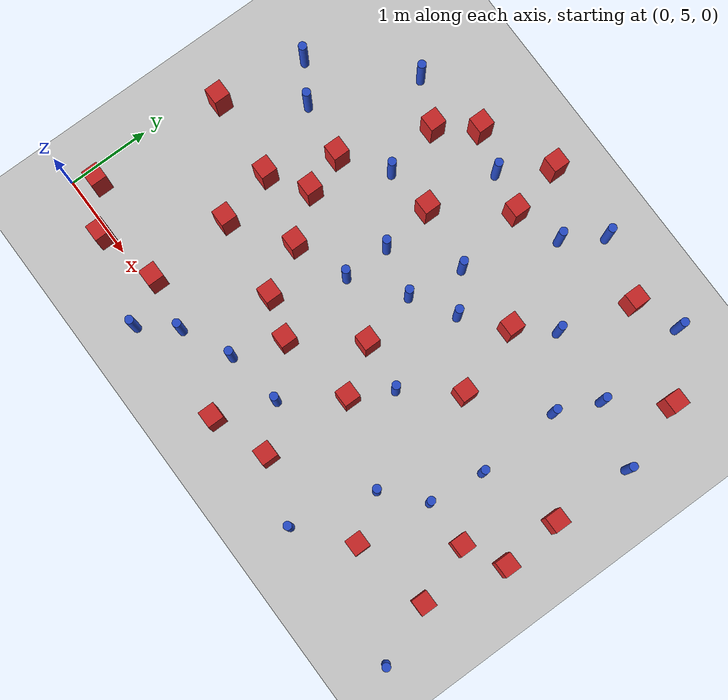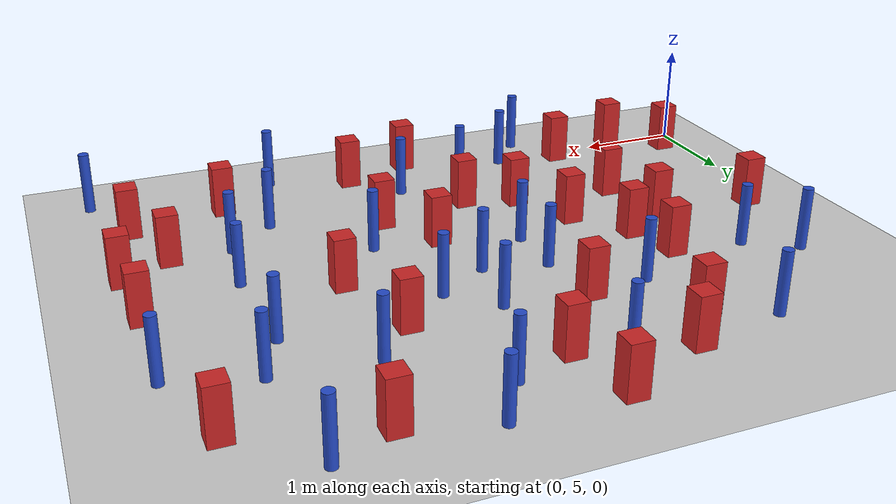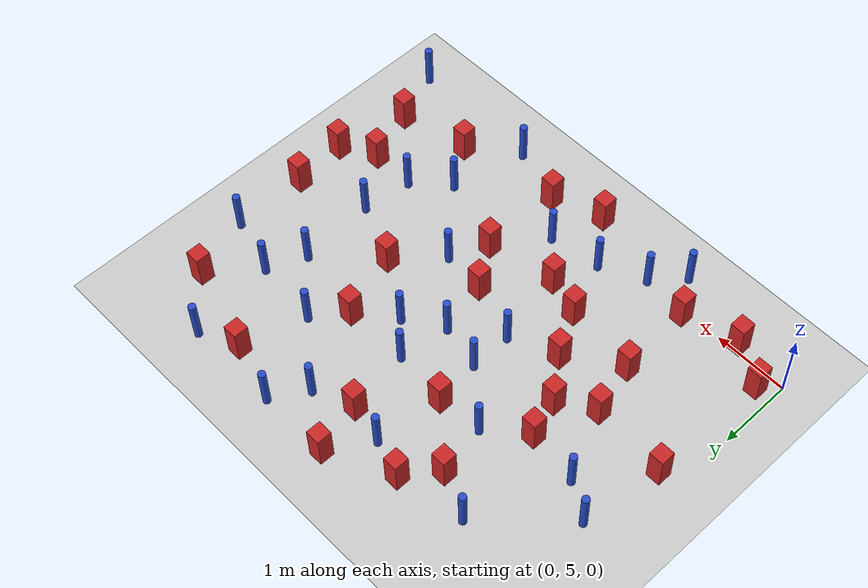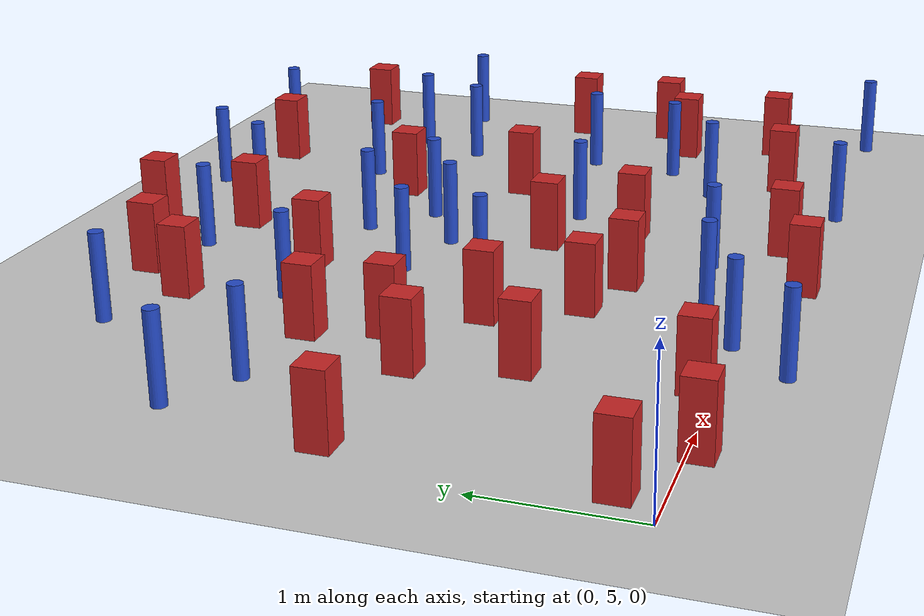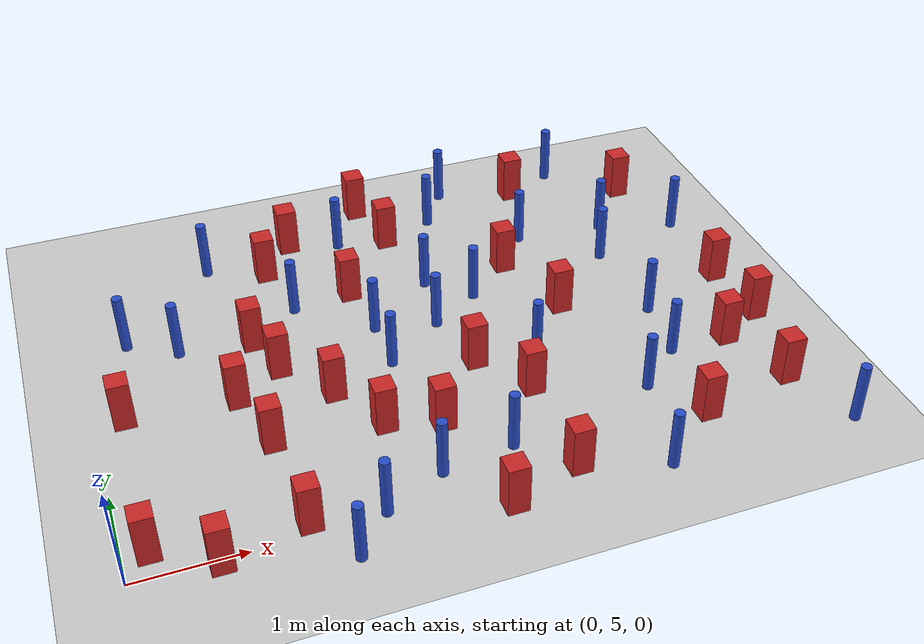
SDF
<sdf version="1.6">
 <world name="default">
  <model name="ground_plane">
   <static>1</static>
   <link name="link">
    <collision name="collision">
     <geometry><plane><normal>0 0 1</normal><size>100 100</size></plane></geometry>
     <surface><friction><ode><mu>100</mu><mu2>50</mu2></ode></friction></surface>
    </collision>
    <visual name="visual">
     <cast_shadows>0</cast_shadows>
     <geometry><plane><normal>0 0 1</normal><size>100 100</size></plane></geometry>
     <material>
      <ambient>1.0 1.0 1.0 1.0</ambient>
      <diffuse>0.8 0.8 0.8 1.0</diffuse>
      <specular>0.01 0.01 0.01 1.000000</specular>
     </material>
    </visual>
   </link>
  </model>
  <model name="square_post_obstacle8">
   <static>true</static>
   <pose>2.43546642392 6.04167440104 -6.11067671241e-07 -5.50515727128e-06 -8.79689657224e-07 2.37013304536e-05</pose>
   <link name="link">
    <pose>0 0 0.25 0 -0 0</pose>
    <inertial>
     <mass>100</mass>
     <inertia>
      <ixx>0.166667</ixx>
      <ixy>0</ixy>
      <ixz>0</ixz>
      <iyy>0.166667</iyy>
      <iyz>0</iyz>
      <izz>0.166667</izz>
     </inertia>
    </inertial>
    <collision name="collision"><geometry><box><size>.2 .2 .5</size></box></geometry></collision>
    <visual name="visual">
     <geometry><box><size>.2 .2 .5</size></box></geometry>
     <material>
      <script><name>Gazebo/Red</name><uri>file://media/materials/scripts/gazebo.material</uri></script>
     </material>
    </visual>
   </link>
  </model>
  <model name="pole_obstacle7">
   <static>true</static>
   <pose>4.10637829773 6.53729007636 -9.47619616065e-06 5.49618799737e-07 2.36310414037e-07 -1.55090534814e-07</pose>
   <link name="link">
    <pose>0 0 0.3 0 -0 0</pose>
    <inertial>
     <mass>1</mass>
     <inertia><ixx>0.145833</ixx><ixy>0</ixy><ixz>0</ixz><iyy>0.145833</iyy><iyz>0</iyz><izz>0.125</izz></inertia>
    </inertial>
    <collision name="collision">
     <geometry><cylinder><radius>0.05</radius><length>.6</length></cylinder></geometry>
    </collision>
    <visual name="visual">
     <geometry><cylinder><radius>0.05</radius><length>.6</length></cylinder></geometry>
     <material>
      <script><name>Gazebo/Blue</name><uri>file://media/materials/scripts/gazebo.material</uri></script>
     </material>
    </visual>
   </link>
  </model>
  <model name="pole_obstacle12">
   <static>true</static>
   <pose>5.3257718025 6.10005783365 -9.47619616065e-06 5.49618799737e-07 2.36310414037e-07 -1.55090534814e-07</pose>
   <link name="link">
    <pose>0 0 0.3 0 -0 0</pose>
    <inertial>
     <mass>1</mass>
     <inertia><ixx>0.145833</ixx><ixy>0</ixy><ixz>0</ixz><iyy>0.145833</iyy><iyz>0</iyz><izz>0.125</izz></inertia>
    </inertial>
    <collision name="collision">
     <geometry><cylinder><radius>0.05</radius><length>.6</length></cylinder></geometry>
    </collision>
    <visual name="visual">
     <geometry><cylinder><radius>0.05</radius><length>.6</length></cylinder></geometry>
     <material>
      <script><name>Gazebo/Blue</name><uri>file://media/materials/scripts/gazebo.material</uri></script>
     </material>
    </visual>
   </link>
  </model>
  <model name="square_post_obstacle22">
   <static>true</static>
   <pose>1.27177692569 6.81806596801 -6.11067671241e-07 -5.50515727128e-06 -8.79689657224e-07 2.37013304536e-05</pose>
   <link name="link">
    <pose>0 0 0.25 0 -0 0</pose>
    <inertial>
     <mass>100</mass>
     <inertia>
      <ixx>0.166667</ixx>
      <ixy>0</ixy>
      <ixz>0</ixz>
      <iyy>0.166667</iyy>
      <iyz>0</iyz>
      <izz>0.166667</izz>
     </inertia>
    </inertial>
    <collision name="collision"><geometry><box><size>.2 .2 .5</size></box></geometry></collision>
    <visual name="visual">
     <geometry><box><size>.2 .2 .5</size></box></geometry>
     <material>
      <script><name>Gazebo/Red</name><uri>file://media/materials/scripts/gazebo.material</uri></script>
     </material>
    </visual>
   </link>
  </model>
  <model name="square_post_obstacle23">
   <static>true</static>
   <pose>4.30752246029 7.9720138151 -6.11067671241e-07 -5.50515727128e-06 -8.79689657224e-07 2.37013304536e-05</pose>
   <link name="link">
    <pose>0 0 0.25 0 -0 0</pose>
    <inertial>
     <mass>100</mass>
     <inertia>
      <ixx>0.166667</ixx>
      <ixy>0</ixy>
      <ixz>0</ixz>
      <iyy>0.166667</iyy>
      <iyz>0</iyz>
      <izz>0.166667</izz>
     </inertia>
    </inertial>
    <collision name="collision"><geometry><box><size>.2 .2 .5</size></box></geometry></collision>
    <visual name="visual">
     <geometry><box><size>.2 .2 .5</size></box></geometry>
     <material>
      <script><name>Gazebo/Red</name><uri>file://media/materials/scripts/gazebo.material</uri></script>
     </material>
    </visual>
   </link>
  </model>
  <model name="pole_obstacle18">
   <static>true</static>
   <pose>1.38558954101 8.90488579344 -9.47619616065e-06 5.49618799737e-07 2.36310414046e-07 -1.55090534809e-07</pose>
   <link name="link">
    <pose>0 0 0.3 0 -0 0</pose>
    <inertial>
     <mass>1</mass>
     <inertia><ixx>0.145833</ixx><ixy>0</ixy><ixz>0</ixz><iyy>0.145833</iyy><iyz>0</iyz><izz>0.125</izz></inertia>
    </inertial>
    <collision name="collision">
     <geometry><cylinder><radius>0.05</radius><length>.6</length></cylinder></geometry>
    </collision>
    <visual name="visual">
     <geometry><cylinder><radius>0.05</radius><length>.6</length></cylinder></geometry>
     <material>
      <script><name>Gazebo/Blue</name><uri>file://media/materials/scripts/gazebo.material</uri></script>
     </material>
    </visual>
   </link>
  </model>
  <model name="square_post_obstacle28">
   <static>true</static>
   <pose>4.58568677364 7.12364642435 -6.11067671241e-07 -5.50515727128e-06 -8.79689657224e-07 2.37013304536e-05</pose>
   <link name="link">
    <pose>0 0 0.25 0 -0 0</pose>
    <inertial>
     <mass>100</mass>
     <inertia>
      <ixx>0.166667</ixx>
      <ixy>0</ixy>
      <ixz>0</ixz>
      <iyy>0.166667</iyy>
      <iyz>0</iyz>
      <izz>0.166667</izz>
     </inertia>
    </inertial>
    <collision name="collision"><geometry><box><size>.2 .2 .5</size></box></geometry></collision>
    <visual name="visual">
     <geometry><box><size>.2 .2 .5</size></box></geometry>
     <material>
      <script><name>Gazebo/Red</name><uri>file://media/materials/scripts/gazebo.material</uri></script>
     </material>
    </visual>
   </link>
  </model>
  <model name="pole_obstacle21">
   <static>true</static>
   <pose>5.3410532559 7.78127137373 -9.47619616065e-06 5.49618799737e-07 2.36310414037e-07 -1.55090534814e-07</pose>
   <link name="link">
    <pose>0 0 0.3 0 -0 0</pose>
    <inertial>
     <mass>1</mass>
     <inertia><ixx>0.145833</ixx><ixy>0</ixy><ixz>0</ixz><iyy>0.145833</iyy><iyz>0</iyz><izz>0.125</izz></inertia>
    </inertial>
    <collision name="collision">
     <geometry><cylinder><radius>0.05</radius><length>.6</length></cylinder></geometry>
    </collision>
    <visual name="visual">
     <geometry><cylinder><radius>0.05</radius><length>.6</length></cylinder></geometry>
     <material>
      <script><name>Gazebo/Blue</name><uri>file://media/materials/scripts/gazebo.material</uri></script>
     </material>
    </visual>
   </link>
  </model>
  <model name="pole_obstacle25">
   <static>true</static>
   <pose>1.81143948928 4.63034651478 -9.47619616065e-06 5.49618799737e-07 2.36310414061e-07 -1.550905348e-07</pose>
   <link name="link">
    <pose>0 0 0.3 0 -0 0</pose>
    <inertial>
     <mass>1</mass>
     <inertia><ixx>0.145833</ixx><ixy>0</ixy><ixz>0</ixz><iyy>0.145833</iyy><iyz>0</iyz><izz>0.125</izz></inertia>
    </inertial>
    <collision name="collision">
     <geometry><cylinder><radius>0.05</radius><length>.6</length></cylinder></geometry>
    </collision>
    <visual name="visual">
     <geometry><cylinder><radius>0.05</radius><length>.6</length></cylinder></geometry>
     <material>
      <script><name>Gazebo/Blue</name><uri>file://media/materials/scripts/gazebo.material</uri></script>
     </material>
    </visual>
   </link>
  </model>
  <model name="square_post_obstacle34">
   <static>true</static>
   <pose>2.93356698034 5.8864579619 -6.11067671241e-07 -5.50515727128e-06 -8.79689657224e-07 2.37013304536e-05</pose>
   <link name="link">
    <pose>0 0 0.25 0 -0 0</pose>
    <inertial>
     <mass>100</mass>
     <inertia>
      <ixx>0.166667</ixx>
      <ixy>0</ixy>
      <ixz>0</ixz>
      <iyy>0.166667</iyy>
      <iyz>0</iyz>
      <izz>0.166667</izz>
     </inertia>
    </inertial>
    <collision name="collision"><geometry><box><size>.2 .2 .5</size></box></geometry></collision>
    <visual name="visual">
     <geometry><box><size>.2 .2 .5</size></box></geometry>
     <material>
      <script><name>Gazebo/Red</name><uri>file://media/materials/scripts/gazebo.material</uri></script>
     </material>
    </visual>
   </link>
  </model>
  <model name="pole_obstacle41">
   <static>true</static>
   <pose>3.83023761516 9.01849544845 -9.4761961606e-06 5.49618799729e-07 2.36310414e-07 -1.55090534824e-07</pose>
   <link name="link">
    <pose>0 0 0.3 0 -0 0</pose>
    <inertial>
     <mass>1</mass>
     <inertia><ixx>0.145833</ixx><ixy>0</ixy><ixz>0</ixz><iyy>0.145833</iyy><iyz>0</iyz><izz>0.125</izz></inertia>
    </inertial>
    <collision name="collision">
     <geometry><cylinder><radius>0.05</radius><length>.6</length></cylinder></geometry>
    </collision>
    <visual name="visual">
     <geometry><cylinder><radius>0.05</radius><length>.6</length></cylinder></geometry>
     <material>
      <script><name>Gazebo/Blue</name><uri>file://media/materials/scripts/gazebo.material</uri></script>
     </material>
    </visual>
   </link>
  </model>
  <model name="pole_obstacle44">
   <static>true</static>
   <pose>2.75375943224 7.40936919324 -9.47619616065e-06 5.49618799738e-07 2.3631041406e-07 -1.55090534801e-07</pose>
   <link name="link">
    <pose>0 0 0.3 0 -0 0</pose>
    <inertial>
     <mass>1</mass>
     <inertia><ixx>0.145833</ixx><ixy>0</ixy><ixz>0</ixz><iyy>0.145833</iyy><iyz>0</iyz><izz>0.125</izz></inertia>
    </inertial>
    <collision name="collision">
     <geometry><cylinder><radius>0.05</radius><length>.6</length></cylinder></geometry>
    </collision>
    <visual name="visual">
     <geometry><cylinder><radius>0.05</radius><length>.6</length></cylinder></geometry>
     <material>
      <script><name>Gazebo/Blue</name><uri>file://media/materials/scripts/gazebo.material</uri></script>
     </material>
    </visual>
   </link>
  </model>
  <model name="square_post_obstacle53">
   <static>true</static>
   <pose>4.8812885833 9.2477752779 -6.11067671241e-07 -5.50515727128e-06 -8.79689657224e-07 2.37013304536e-05</pose>
   <link name="link">
    <pose>0 0 0.25 0 -0 0</pose>
    <inertial>
     <mass>100</mass>
     <inertia>
      <ixx>0.166667</ixx>
      <ixy>0</ixy>
      <ixz>0</ixz>
      <iyy>0.166667</iyy>
      <iyz>0</iyz>
      <izz>0.166667</izz>
     </inertia>
    </inertial>
    <collision name="collision"><geometry><box><size>.2 .2 .5</size></box></geometry></collision>
    <visual name="visual">
     <geometry><box><size>.2 .2 .5</size></box></geometry>
     <material>
      <script><name>Gazebo/Red</name><uri>file://media/materials/scripts/gazebo.material</uri></script>
     </material>
    </visual>
   </link>
  </model>
  <model name="square_post_obstacle63">
   <static>true</static>
   <pose>1.57702806433 7.58858145182 -6.11067671241e-07 -5.50515727128e-06 -8.79689657224e-07 2.37013304536e-05</pose>
   <link name="link">
    <pose>0 0 0.25 0 -0 0</pose>
    <inertial>
     <mass>100</mass>
     <inertia>
      <ixx>0.166667</ixx>
      <ixy>0</ixy>
      <ixz>0</ixz>
      <iyy>0.166667</iyy>
      <iyz>0</iyz>
      <izz>0.166667</izz>
     </inertia>
    </inertial>
    <collision name="collision"><geometry><box><size>.2 .2 .5</size></box></geometry></collision>
    <visual name="visual">
     <geometry><box><size>.2 .2 .5</size></box></geometry>
     <material>
      <script><name>Gazebo/Red</name><uri>file://media/materials/scripts/gazebo.material</uri></script>
     </material>
    </visual>
   </link>
  </model>
  <model name="square_post_obstacle65">
   <static>true</static>
   <pose>0.222399405426 5.24954916814 -6.11067671241e-07 -5.50515727128e-06 -8.79689657224e-07 2.37013304536e-05</pose>
   <link name="link">
    <pose>0 0 0.25 0 -0 0</pose>
    <inertial>
     <mass>100</mass>
     <inertia>
      <ixx>0.166667</ixx>
      <ixy>0</ixy>
      <ixz>0</ixz>
      <iyy>0.166667</iyy>
      <iyz>0</iyz>
      <izz>0.166667</izz>
     </inertia>
    </inertial>
    <collision name="collision"><geometry><box><size>.2 .2 .5</size></box></geometry></collision>
    <visual name="visual">
     <geometry><box><size>.2 .2 .5</size></box></geometry>
     <material>
      <script><name>Gazebo/Red</name><uri>file://media/materials/scripts/gazebo.material</uri></script>
     </material>
    </visual>
   </link>
  </model>
  <model name="square_post_obstacle68">
   <static>true</static>
   <pose>0.260901260837 6.89792964379 -6.11067671241e-07 -5.50515727128e-06 -8.79689657224e-07 2.37013304536e-05</pose>
   <link name="link">
    <pose>0 0 0.25 0 -0 0</pose>
    <inertial>
     <mass>100</mass>
     <inertia>
      <ixx>0.166667</ixx>
      <ixy>0</ixy>
      <ixz>0</ixz>
      <iyy>0.166667</iyy>
      <iyz>0</iyz>
      <izz>0.166667</izz>
     </inertia>
    </inertial>
    <collision name="collision"><geometry><box><size>.2 .2 .5</size></box></geometry></collision>
    <visual name="visual">
     <geometry><box><size>.2 .2 .5</size></box></geometry>
     <material>
      <script><name>Gazebo/Red</name><uri>file://media/materials/scripts/gazebo.material</uri></script>
     </material>
    </visual>
   </link>
  </model>
  <model name="square_post_obstacle69">
   <static>true</static>
   <pose>3.16826933754 4.7379641968 -6.11067671241e-07 -5.50515727128e-06 -8.79689657224e-07 2.37013304536e-05</pose>
   <link name="link">
    <pose>0 0 0.25 0 -0 0</pose>
    <inertial>
     <mass>100</mass>
     <inertia>
      <ixx>0.166667</ixx>
      <ixy>0</ixy>
      <ixz>0</ixz>
      <iyy>0.166667</iyy>
      <iyz>0</iyz>
      <izz>0.166667</izz>
     </inertia>
    </inertial>
    <collision name="collision"><geometry><box><size>.2 .2 .5</size></box></geometry></collision>
    <visual name="visual">
     <geometry><box><size>.2 .2 .5</size></box></geometry>
     <material>
      <script><name>Gazebo/Red</name><uri>file://media/materials/scripts/gazebo.material</uri></script>
     </material>
    </visual>
   </link>
  </model>
  <model name="square_post_obstacle72">
   <static>true</static>
   <pose>1.72648331936 7.11061027323 -6.11067671241e-07 -5.50515727128e-06 -8.79689657224e-07 2.37013304536e-05</pose>
   <link name="link">
    <pose>0 0 0.25 0 -0 0</pose>
    <inertial>
     <mass>100</mass>
     <inertia>
      <ixx>0.166667</ixx>
      <ixy>0</ixy>
      <ixz>0</ixz>
      <iyy>0.166667</iyy>
      <iyz>0</iyz>
      <izz>0.166667</izz>
     </inertia>
    </inertial>
    <collision name="collision"><geometry><box><size>.2 .2 .5</size></box></geometry></collision>
    <visual name="visual">
     <geometry><box><size>.2 .2 .5</size></box></geometry>
     <material>
      <script><name>Gazebo/Red</name><uri>file://media/materials/scripts/gazebo.material</uri></script>
     </material>
    </visual>
   </link>
  </model>
  <model name="pole_obstacle74">
   <static>true</static>
   <pose>3.84310736088 7.58638081119 -9.47619616065e-06 5.49618799738e-07 2.3631041406e-07 -1.55090534801e-07</pose>
   <link name="link">
    <pose>0 0 0.3 0 -0 0</pose>
    <inertial>
     <mass>1</mass>
     <inertia><ixx>0.145833</ixx><ixy>0</ixy><ixz>0</ixz><iyy>0.145833</iyy><iyz>0</iyz><izz>0.125</izz></inertia>
    </inertial>
    <collision name="collision">
     <geometry><cylinder><radius>0.05</radius><length>.6</length></cylinder></geometry>
    </collision>
    <visual name="visual">
     <geometry><cylinder><radius>0.05</radius><length>.6</length></cylinder></geometry>
     <material>
      <script><name>Gazebo/Blue</name><uri>file://media/materials/scripts/gazebo.material</uri></script>
     </material>
    </visual>
   </link>
  </model>
  <model name="pole_obstacle83">
   <static>true</static>
   <pose>2.78955838694 8.91818049143 -9.4761961606e-06 5.49618799729e-07 2.36310414e-07 -1.55090534824e-07</pose>
   <link name="link">
    <pose>0 0 0.3 0 -0 0</pose>
    <inertial>
     <mass>1</mass>
     <inertia><ixx>0.145833</ixx><ixy>0</ixy><ixz>0</ixz><iyy>0.145833</iyy><iyz>0</iyz><izz>0.125</izz></inertia>
    </inertial>
    <collision name="collision">
     <geometry><cylinder><radius>0.05</radius><length>.6</length></cylinder></geometry>
    </collision>
    <visual name="visual">
     <geometry><cylinder><radius>0.05</radius><length>.6</length></cylinder></geometry>
     <material>
      <script><name>Gazebo/Blue</name><uri>file://media/materials/scripts/gazebo.material</uri></script>
     </material>
    </visual>
   </link>
  </model>
  <model name="pole_obstacle87">
   <static>true</static>
   <pose>3.44518572234 7.948303019 -9.47619616065e-06 5.49618799738e-07 2.3631041406e-07 -1.55090534801e-07</pose>
   <link name="link">
    <pose>0 0 0.3 0 -0 0</pose>
    <inertial>
     <mass>1</mass>
     <inertia><ixx>0.145833</ixx><ixy>0</ixy><ixz>0</ixz><iyy>0.145833</iyy><iyz>0</iyz><izz>0.125</izz></inertia>
    </inertial>
    <collision name="collision">
     <geometry><cylinder><radius>0.05</radius><length>.6</length></cylinder></geometry>
    </collision>
    <visual name="visual">
     <geometry><cylinder><radius>0.05</radius><length>.6</length></cylinder></geometry>
     <material>
      <script><name>Gazebo/Blue</name><uri>file://media/materials/scripts/gazebo.material</uri></script>
     </material>
    </visual>
   </link>
  </model>
  <model name="pole_obstacle92">
   <static>true</static>
   <pose>6.31809242531 8.05896166753 -9.47619616065e-06 5.49618799737e-07 2.36310414065e-07 -1.55090534796e-07</pose>
   <link name="link">
    <pose>0 0 0.3 0 -0 0</pose>
    <inertial>
     <mass>1</mass>
     <inertia><ixx>0.145833</ixx><ixy>0</ixy><ixz>0</ixz><iyy>0.145833</iyy><iyz>0</iyz><izz>0.125</izz></inertia>
    </inertial>
    <collision name="collision">
     <geometry><cylinder><radius>0.05</radius><length>.6</length></cylinder></geometry>
    </collision>
    <visual name="visual">
     <geometry><cylinder><radius>0.05</radius><length>.6</length></cylinder></geometry>
     <material>
      <script><name>Gazebo/Blue</name><uri>file://media/materials/scripts/gazebo.material</uri></script>
     </material>
    </visual>
   </link>
  </model>
  <model name="square_post_obstacle87">
   <static>true</static>
   <pose>2.28157114902 9.07463806638 -6.11067671241e-07 -5.50515727128e-06 -8.79689657224e-07 2.37013304536e-05</pose>
   <link name="link">
    <pose>0 0 0.25 0 -0 0</pose>
    <inertial>
     <mass>100</mass>
     <inertia>
      <ixx>0.166667</ixx>
      <ixy>0</ixy>
      <ixz>0</ixz>
      <iyy>0.166667</iyy>
      <iyz>0</iyz>
      <izz>0.166667</izz>
     </inertia>
    </inertial>
    <collision name="collision"><geometry><box><size>.2 .2 .5</size></box></geometry></collision>
    <visual name="visual">
     <geometry><box><size>.2 .2 .5</size></box></geometry>
     <material>
      <script><name>Gazebo/Red</name><uri>file://media/materials/scripts/gazebo.material</uri></script>
     </material>
    </visual>
   </link>
  </model>
  <model name="square_post_obstacle89">
   <static>true</static>
   <pose>6.35724457731 6.35814750005 -6.11067671241e-07 -5.50515727128e-06 -8.79689657224e-07 2.37013304536e-05</pose>
   <link name="link">
    <pose>0 0 0.25 0 -0 0</pose>
    <inertial>
     <mass>100</mass>
     <inertia>
      <ixx>0.166667</ixx>
      <ixy>0</ixy>
      <ixz>0</ixz>
      <iyy>0.166667</iyy>
      <iyz>0</iyz>
      <izz>0.166667</izz>
     </inertia>
    </inertial>
    <collision name="collision"><geometry><box><size>.2 .2 .5</size></box></geometry></collision>
    <visual name="visual">
     <geometry><box><size>.2 .2 .5</size></box></geometry>
     <material>
      <script><name>Gazebo/Red</name><uri>file://media/materials/scripts/gazebo.material</uri></script>
     </material>
    </visual>
   </link>
  </model>
  <model name="pole_obstacle103">
   <static>true</static>
   <pose>4.87785373715 5.70857088287 -9.47619616065e-06 5.49618799737e-07 2.36310414037e-07 -1.55090534814e-07</pose>
   <link name="link">
    <pose>0 0 0.3 0 -0 0</pose>
    <inertial>
     <mass>1</mass>
     <inertia><ixx>0.145833</ixx><ixy>0</ixy><ixz>0</ixz><iyy>0.145833</iyy><iyz>0</iyz><izz>0.125</izz></inertia>
    </inertial>
    <collision name="collision">
     <geometry><cylinder><radius>0.05</radius><length>.6</length></cylinder></geometry>
    </collision>
    <visual name="visual">
     <geometry><cylinder><radius>0.05</radius><length>.6</length></cylinder></geometry>
     <material>
      <script><name>Gazebo/Blue</name><uri>file://media/materials/scripts/gazebo.material</uri></script>
     </material>
    </visual>
   </link>
  </model>
  <model name="pole_obstacle105">
   <static>true</static>
   <pose>5.40403462678 6.76316252326 -9.47619616065e-06 5.49618799737e-07 2.36310414037e-07 -1.55090534814e-07</pose>
   <link name="link">
    <pose>0 0 0.3 0 -0 0</pose>
    <inertial>
     <mass>1</mass>
     <inertia><ixx>0.145833</ixx><ixy>0</ixy><ixz>0</ixz><iyy>0.145833</iyy><iyz>0</iyz><izz>0.125</izz></inertia>
    </inertial>
    <collision name="collision">
     <geometry><cylinder><radius>0.05</radius><length>.6</length></cylinder></geometry>
    </collision>
    <visual name="visual">
     <geometry><cylinder><radius>0.05</radius><length>.6</length></cylinder></geometry>
     <material>
      <script><name>Gazebo/Blue</name><uri>file://media/materials/scripts/gazebo.material</uri></script>
     </material>
    </visual>
   </link>
  </model>
  <model name="pole_obstacle112">
   <static>true</static>
   <pose>3.34596419261 7.27964436065 -9.47619616065e-06 5.49618799738e-07 2.3631041406e-07 -1.55090534801e-07</pose>
   <link name="link">
    <pose>0 0 0.3 0 -0 0</pose>
    <inertial>
     <mass>1</mass>
     <inertia><ixx>0.145833</ixx><ixy>0</ixy><ixz>0</ixz><iyy>0.145833</iyy><iyz>0</iyz><izz>0.125</izz></inertia>
    </inertial>
    <collision name="collision">
     <geometry><cylinder><radius>0.05</radius><length>.6</length></cylinder></geometry>
    </collision>
    <visual name="visual">
     <geometry><cylinder><radius>0.05</radius><length>.6</length></cylinder></geometry>
     <material>
      <script><name>Gazebo/Blue</name><uri>file://media/materials/scripts/gazebo.material</uri></script>
     </material>
    </visual>
   </link>
  </model>
  <model name="pole_obstacle114">
   <static>true</static>
   <pose>0.42685068496 7.95970833525 -9.47619616065e-06 5.49618799738e-07 2.3631041405e-07 -1.55090534806e-07</pose>
   <link name="link">
    <pose>0 0 0.3 0 -0 0</pose>
    <inertial>
     <mass>1</mass>
     <inertia><ixx>0.145833</ixx><ixy>0</ixy><ixz>0</ixz><iyy>0.145833</iyy><iyz>0</iyz><izz>0.125</izz></inertia>
    </inertial>
    <collision name="collision">
     <geometry><cylinder><radius>0.05</radius><length>.6</length></cylinder></geometry>
    </collision>
    <visual name="visual">
     <geometry><cylinder><radius>0.05</radius><length>.6</length></cylinder></geometry>
     <material>
      <script><name>Gazebo/Blue</name><uri>file://media/materials/scripts/gazebo.material</uri></script>
     </material>
    </visual>
   </link>
  </model>
  <model name="square_post_obstacle102">
   <static>true</static>
   <pose>2.66772375032 8.03851263824 -6.11067671241e-07 -5.50515727128e-06 -8.79689657224e-07 2.37013304536e-05</pose>
   <link name="link">
    <pose>0 0 0.25 0 -0 0</pose>
    <inertial>
     <mass>100</mass>
     <inertia>
      <ixx>0.166667</ixx>
      <ixy>0</ixy>
      <ixz>0</ixz>
      <iyy>0.166667</iyy>
      <iyz>0</iyz>
      <izz>0.166667</izz>
     </inertia>
    </inertial>
    <collision name="collision"><geometry><box><size>.2 .2 .5</size></box></geometry></collision>
    <visual name="visual">
     <geometry><box><size>.2 .2 .5</size></box></geometry>
     <material>
      <script><name>Gazebo/Red</name><uri>file://media/materials/scripts/gazebo.material</uri></script>
     </material>
    </visual>
   </link>
  </model>
  <model name="pole_obstacle122">
   <static>true</static>
   <pose>4.65311188998 8.37587174289 -9.47619616065e-06 5.49618799737e-07 2.36310414065e-07 -1.55090534796e-07</pose>
   <link name="link">
    <pose>0 0 0.3 0 -0 0</pose>
    <inertial>
     <mass>1</mass>
     <inertia><ixx>0.145833</ixx><ixy>0</ixy><ixz>0</ixz><iyy>0.145833</iyy><iyz>0</iyz><izz>0.125</izz></inertia>
    </inertial>
    <collision name="collision">
     <geometry><cylinder><radius>0.05</radius><length>.6</length></cylinder></geometry>
    </collision>
    <visual name="visual">
     <geometry><cylinder><radius>0.05</radius><length>.6</length></cylinder></geometry>
     <material>
      <script><name>Gazebo/Blue</name><uri>file://media/materials/scripts/gazebo.material</uri></script>
     </material>
    </visual>
   </link>
  </model>
  <model name="square_post_obstacle118">
   <static>true</static>
   <pose>6.29701176196 7.07627620547 -6.11067671241e-07 -5.50515727128e-06 -8.79689657224e-07 2.37013304536e-05</pose>
   <link name="link">
    <pose>0 0 0.25 0 -0 0</pose>
    <inertial>
     <mass>100</mass>
     <inertia>
      <ixx>0.166667</ixx>
      <ixy>0</ixy>
      <ixz>0</ixz>
      <iyy>0.166667</iyy>
      <iyz>0</iyz>
      <izz>0.166667</izz>
     </inertia>
    </inertial>
    <collision name="collision"><geometry><box><size>.2 .2 .5</size></box></geometry></collision>
    <visual name="visual">
     <geometry><box><size>.2 .2 .5</size></box></geometry>
     <material>
      <script><name>Gazebo/Red</name><uri>file://media/materials/scripts/gazebo.material</uri></script>
     </material>
    </visual>
   </link>
  </model>
  <model name="square_post_obstacle123">
   <static>true</static>
   <pose>5.89831850542 6.10434773116 -6.11067671241e-07 -5.50515727128e-06 -8.79689657224e-07 2.37013304536e-05</pose>
   <link name="link">
    <pose>0 0 0.25 0 -0 0</pose>
    <inertial>
     <mass>100</mass>
     <inertia>
      <ixx>0.166667</ixx>
      <ixy>0</ixy>
      <ixz>0</ixz>
      <iyy>0.166667</iyy>
      <iyz>0</iyz>
      <izz>0.166667</izz>
     </inertia>
    </inertial>
    <collision name="collision"><geometry><box><size>.2 .2 .5</size></box></geometry></collision>
    <visual name="visual">
     <geometry><box><size>.2 .2 .5</size></box></geometry>
     <material>
      <script><name>Gazebo/Red</name><uri>file://media/materials/scripts/gazebo.material</uri></script>
     </material>
    </visual>
   </link>
  </model>
  <model name="square_post_obstacle127">
   <static>true</static>
   <pose>3.86024947671 6.06462246679 -6.11067671241e-07 -5.50515727128e-06 -8.79689657224e-07 2.37013304536e-05</pose>
   <link name="link">
    <pose>0 0 0.25 0 -0 0</pose>
    <inertial>
     <mass>100</mass>
     <inertia>
      <ixx>0.166667</ixx>
      <ixy>0</ixy>
      <ixz>0</ixz>
      <iyy>0.166667</iyy>
      <iyz>0</iyz>
      <izz>0.166667</izz>
     </inertia>
    </inertial>
    <collision name="collision"><geometry><box><size>.2 .2 .5</size></box></geometry></collision>
    <visual name="visual">
     <geometry><box><size>.2 .2 .5</size></box></geometry>
     <material>
      <script><name>Gazebo/Red</name><uri>file://media/materials/scripts/gazebo.material</uri></script>
     </material>
    </visual>
   </link>
  </model>
  <model name="pole_obstacle145">
   <static>true</static>
   <pose>6.44043878572 4.67976668895 -9.47619616065e-06 5.49618799737e-07 2.36310414037e-07 -1.55090534814e-07</pose>
   <link name="link">
    <pose>0 0 0.3 0 -0 0</pose>
    <inertial>
     <mass>1</mass>
     <inertia><ixx>0.145833</ixx><ixy>0</ixy><ixz>0</ixz><iyy>0.145833</iyy><iyz>0</iyz><izz>0.125</izz></inertia>
    </inertial>
    <collision name="collision">
     <geometry><cylinder><radius>0.05</radius><length>.6</length></cylinder></geometry>
    </collision>
    <visual name="visual">
     <geometry><cylinder><radius>0.05</radius><length>.6</length></cylinder></geometry>
     <material>
      <script><name>Gazebo/Blue</name><uri>file://media/materials/scripts/gazebo.material</uri></script>
     </material>
    </visual>
   </link>
  </model>
  <model name="pole_obstacle149">
   <static>true</static>
   <pose>2.14718949697 5.02309088512 -9.47619616065e-06 5.49618799738e-07 2.3631041406e-07 -1.55090534801e-07</pose>
   <link name="link">
    <pose>0 0 0.3 0 -0 0</pose>
    <inertial>
     <mass>1</mass>
     <inertia><ixx>0.145833</ixx><ixy>0</ixy><ixz>0</ixz><iyy>0.145833</iyy><iyz>0</iyz><izz>0.125</izz></inertia>
    </inertial>
    <collision name="collision">
     <geometry><cylinder><radius>0.05</radius><length>.6</length></cylinder></geometry>
    </collision>
    <visual name="visual">
     <geometry><cylinder><radius>0.05</radius><length>.6</length></cylinder></geometry>
     <material>
      <script><name>Gazebo/Blue</name><uri>file://media/materials/scripts/gazebo.material</uri></script>
     </material>
    </visual>
   </link>
  </model>
  <model name="pole_obstacle156">
   <static>true</static>
   <pose>3.42103992012 5.40444972784 -9.47619616065e-06 5.49618799738e-07 2.3631041406e-07 -1.55090534801e-07</pose>
   <link name="link">
    <pose>0 0 0.3 0 -0 0</pose>
    <inertial>
     <mass>1</mass>
     <inertia><ixx>0.145833</ixx><ixy>0</ixy><ixz>0</ixz><iyy>0.145833</iyy><iyz>0</iyz><izz>0.125</izz></inertia>
    </inertial>
    <collision name="collision">
     <geometry><cylinder><radius>0.05</radius><length>.6</length></cylinder></geometry>
    </collision>
    <visual name="visual">
     <geometry><cylinder><radius>0.05</radius><length>.6</length></cylinder></geometry>
     <material>
      <script><name>Gazebo/Blue</name><uri>file://media/materials/scripts/gazebo.material</uri></script>
     </material>
    </visual>
   </link>
  </model>
  <model name="square_post_obstacle147">
   <static>true</static>
   <pose>1.44215404867 6.14983074345 -6.11067671241e-07 -5.50515727128e-06 -8.79689657224e-07 2.37013304536e-05</pose>
   <link name="link">
    <pose>0 0 0.25 0 -0 0</pose>
    <inertial>
     <mass>100</mass>
     <inertia>
      <ixx>0.166667</ixx>
      <ixy>0</ixy>
      <ixz>0</ixz>
      <iyy>0.166667</iyy>
      <iyz>0</iyz>
      <izz>0.166667</izz>
     </inertia>
    </inertial>
    <collision name="collision"><geometry><box><size>.2 .2 .5</size></box></geometry></collision>
    <visual name="visual">
     <geometry><box><size>.2 .2 .5</size></box></geometry>
     <material>
      <script><name>Gazebo/Red</name><uri>file://media/materials/scripts/gazebo.material</uri></script>
     </material>
    </visual>
   </link>
  </model>
  <model name="square_post_obstacle152">
   <static>true</static>
   <pose>1.94681838213 8.653191539 -6.11067671241e-07 -5.50515727128e-06 -8.79689657224e-07 2.37013304536e-05</pose>
   <link name="link">
    <pose>0 0 0.25 0 -0 0</pose>
    <inertial>
     <mass>100</mass>
     <inertia>
      <ixx>0.166667</ixx>
      <ixy>0</ixy>
      <ixz>0</ixz>
      <iyy>0.166667</iyy>
      <iyz>0</iyz>
      <izz>0.166667</izz>
     </inertia>
    </inertial>
    <collision name="collision"><geometry><box><size>.2 .2 .5</size></box></geometry></collision>
    <visual name="visual">
     <geometry><box><size>.2 .2 .5</size></box></geometry>
     <material>
      <script><name>Gazebo/Red</name><uri>file://media/materials/scripts/gazebo.material</uri></script>
     </material>
    </visual>
   </link>
  </model>
  <model name="square_post_obstacle154">
   <static>true</static>
   <pose>6.14922651789 5.39690254482 -6.11067671241e-07 -5.50515727128e-06 -8.79689657224e-07 2.37013304536e-05</pose>
   <link name="link">
    <pose>0 0 0.25 0 -0 0</pose>
    <inertial>
     <mass>100</mass>
     <inertia>
      <ixx>0.166667</ixx>
      <ixy>0</ixy>
      <ixz>0</ixz>
      <iyy>0.166667</iyy>
      <iyz>0</iyz>
      <izz>0.166667</izz>
     </inertia>
    </inertial>
    <collision name="collision"><geometry><box><size>.2 .2 .5</size></box></geometry></collision>
    <visual name="visual">
     <geometry><box><size>.2 .2 .5</size></box></geometry>
     <material>
      <script><name>Gazebo/Red</name><uri>file://media/materials/scripts/gazebo.material</uri></script>
     </material>
    </visual>
   </link>
  </model>
  <model name="square_post_obstacle157">
   <static>true</static>
   <pose>1.51241965426 5.11451884327 -6.11067671241e-07 -5.50515727128e-06 -8.79689657224e-07 2.37013304536e-05</pose>
   <link name="link">
    <pose>0 0 0.25 0 -0 0</pose>
    <inertial>
     <mass>100</mass>
     <inertia>
      <ixx>0.166667</ixx>
      <ixy>0</ixy>
      <ixz>0</ixz>
      <iyy>0.166667</iyy>
      <iyz>0</iyz>
      <izz>0.166667</izz>
     </inertia>
    </inertial>
    <collision name="collision"><geometry><box><size>.2 .2 .5</size></box></geometry></collision>
    <visual name="visual">
     <geometry><box><size>.2 .2 .5</size></box></geometry>
     <material>
      <script><name>Gazebo/Red</name><uri>file://media/materials/scripts/gazebo.material</uri></script>
     </material>
    </visual>
   </link>
  </model>
  <model name="square_post_obstacle160">
   <static>true</static>
   <pose>0.7532136333 4.93388436897 -6.11067671241e-07 -5.50515727128e-06 -8.79689657224e-07 2.37013304536e-05</pose>
   <link name="link">
    <pose>0 0 0.25 0 -0 0</pose>
    <inertial>
     <mass>100</mass>
     <inertia>
      <ixx>0.166667</ixx>
      <ixy>0</ixy>
      <ixz>0</ixz>
      <iyy>0.166667</iyy>
      <iyz>0</iyz>
      <izz>0.166667</izz>
     </inertia>
    </inertial>
    <collision name="collision"><geometry><box><size>.2 .2 .5</size></box></geometry></collision>
    <visual name="visual">
     <geometry><box><size>.2 .2 .5</size></box></geometry>
     <material>
      <script><name>Gazebo/Red</name><uri>file://media/materials/scripts/gazebo.material</uri></script>
     </material>
    </visual>
   </link>
  </model>
  <model name="pole_obstacle169">
   <static>true</static>
   <pose>5.55665855731 8.2889400553 -9.47619616065e-06 5.49618799737e-07 2.36310414065e-07 -1.55090534796e-07</pose>
   <link name="link">
    <pose>0 0 0.3 0 -0 0</pose>
    <inertial>
     <mass>1</mass>
     <inertia><ixx>0.145833</ixx><ixy>0</ixy><ixz>0</ixz><iyy>0.145833</iyy><iyz>0</iyz><izz>0.125</izz></inertia>
    </inertial>
    <collision name="collision">
     <geometry><cylinder><radius>0.05</radius><length>.6</length></cylinder></geometry>
    </collision>
    <visual name="visual">
     <geometry><cylinder><radius>0.05</radius><length>.6</length></cylinder></geometry>
     <material>
      <script><name>Gazebo/Blue</name><uri>file://media/materials/scripts/gazebo.material</uri></script>
     </material>
    </visual>
   </link>
  </model>
  <model name="pole_obstacle178">
   <static>true</static>
   <pose>2.72808796873 5.29863007895 -9.47619616065e-06 5.49618799738e-07 2.3631041406e-07 -1.55090534801e-07</pose>
   <link name="link">
    <pose>0 0 0.3 0 -0 0</pose>
    <inertial>
     <mass>1</mass>
     <inertia><ixx>0.145833</ixx><ixy>0</ixy><ixz>0</ixz><iyy>0.145833</iyy><iyz>0</iyz><izz>0.125</izz></inertia>
    </inertial>
    <collision name="collision">
     <geometry><cylinder><radius>0.05</radius><length>.6</length></cylinder></geometry>
    </collision>
    <visual name="visual">
     <geometry><cylinder><radius>0.05</radius><length>.6</length></cylinder></geometry>
     <material>
      <script><name>Gazebo/Blue</name><uri>file://media/materials/scripts/gazebo.material</uri></script>
     </material>
    </visual>
   </link>
  </model>
  <model name="square_post_obstacle170">
   <static>true</static>
   <pose>3.8485442839 4.97088264626 -6.11067671241e-07 -5.50515727128e-06 -8.79689657224e-07 2.37013304536e-05</pose>
   <link name="link">
    <pose>0 0 0.25 0 -0 0</pose>
    <inertial>
     <mass>100</mass>
     <inertia>
      <ixx>0.166667</ixx>
      <ixy>0</ixy>
      <ixz>0</ixz>
      <iyy>0.166667</iyy>
      <iyz>0</iyz>
      <izz>0.166667</izz>
     </inertia>
    </inertial>
    <collision name="collision"><geometry><box><size>.2 .2 .5</size></box></geometry></collision>
    <visual name="visual">
     <geometry><box><size>.2 .2 .5</size></box></geometry>
     <material>
      <script><name>Gazebo/Red</name><uri>file://media/materials/scripts/gazebo.material</uri></script>
     </material>
    </visual>
   </link>
  </model>
  <model name="square_post_obstacle178">
   <static>true</static>
   <pose>3.49655460223 6.60136245589 -6.11067671241e-07 -5.50515727128e-06 -8.79689657224e-07 2.37013304536e-05</pose>
   <link name="link">
    <pose>0 0 0.25 0 -0 0</pose>
    <inertial>
     <mass>100</mass>
     <inertia>
      <ixx>0.166667</ixx>
      <ixy>0</ixy>
      <ixz>0</ixz>
      <iyy>0.166667</iyy>
      <iyz>0</iyz>
      <izz>0.166667</izz>
     </inertia>
    </inertial>
    <collision name="collision"><geometry><box><size>.2 .2 .5</size></box></geometry></collision>
    <visual name="visual">
     <geometry><box><size>.2 .2 .5</size></box></geometry>
     <material>
      <script><name>Gazebo/Red</name><uri>file://media/materials/scripts/gazebo.material</uri></script>
     </material>
    </visual>
   </link>
  </model>
  <model name="pole_obstacle195">
   <static>true</static>
   <pose>2.75789255077 6.85079232845 -9.47619616065e-06 5.49618799738e-07 2.3631041406e-07 -1.55090534801e-07</pose>
   <link name="link">
    <pose>0 0 0.3 0 -0 0</pose>
    <inertial>
     <mass>1</mass>
     <inertia><ixx>0.145833</ixx><ixy>0</ixy><ixz>0</ixz><iyy>0.145833</iyy><iyz>0</iyz><izz>0.125</izz></inertia>
    </inertial>
    <collision name="collision">
     <geometry><cylinder><radius>0.05</radius><length>.6</length></cylinder></geometry>
    </collision>
    <visual name="visual">
     <geometry><cylinder><radius>0.05</radius><length>.6</length></cylinder></geometry>
     <material>
      <script><name>Gazebo/Blue</name><uri>file://media/materials/scripts/gazebo.material</uri></script>
     </material>
    </visual>
   </link>
  </model>
  <model name="pole_obstacle196">
   <static>true</static>
   <pose>4.62968218883 4.70990519876 -9.47619616065e-06 5.49618799737e-07 2.36310414037e-07 -1.55090534814e-07</pose>
   <link name="link">
    <pose>0 0 0.3 0 -0 0</pose>
    <inertial>
     <mass>1</mass>
     <inertia><ixx>0.145833</ixx><ixy>0</ixy><ixz>0</ixz><iyy>0.145833</iyy><iyz>0</iyz><izz>0.125</izz></inertia>
    </inertial>
    <collision name="collision">
     <geometry><cylinder><radius>0.05</radius><length>.6</length></cylinder></geometry>
    </collision>
    <visual name="visual">
     <geometry><cylinder><radius>0.05</radius><length>.6</length></cylinder></geometry>
     <material>
      <script><name>Gazebo/Blue</name><uri>file://media/materials/scripts/gazebo.material</uri></script>
     </material>
    </visual>
   </link>
  </model>
  <model name="square_post_obstacle192">
   <static>true</static>
   <pose>5.21873583094 5.20044575297 -6.11067671241e-07 -5.50515727128e-06 -8.79689657224e-07 2.37013304536e-05</pose>
   <link name="link">
    <pose>0 0 0.25 0 -0 0</pose>
    <inertial>
     <mass>100</mass>
     <inertia>
      <ixx>0.166667</ixx>
      <ixy>0</ixy>
      <ixz>0</ixz>
      <iyy>0.166667</iyy>
      <iyz>0</iyz>
      <izz>0.166667</izz>
     </inertia>
    </inertial>
    <collision name="collision"><geometry><box><size>.2 .2 .5</size></box></geometry></collision>
    <visual name="visual">
     <geometry><box><size>.2 .2 .5</size></box></geometry>
     <material>
      <script><name>Gazebo/Red</name><uri>file://media/materials/scripts/gazebo.material</uri></script>
     </material>
    </visual>
   </link>
  </model>
  <model name="pole_obstacle200">
   <static>true</static>
   <pose>2.0841698328 7.9753897754 -9.47619616065e-06 5.49618799737e-07 2.3631041406e-07 -1.55090534802e-07</pose>
   <link name="link">
    <pose>0 0 0.3 0 -0 0</pose>
    <inertial>
     <mass>1</mass>
     <inertia><ixx>0.145833</ixx><ixy>0</ixy><ixz>0</ixz><iyy>0.145833</iyy><iyz>0</iyz><izz>0.125</izz></inertia>
    </inertial>
    <collision name="collision">
     <geometry><cylinder><radius>0.05</radius><length>.6</length></cylinder></geometry>
    </collision>
    <visual name="visual">
     <geometry><cylinder><radius>0.05</radius><length>.6</length></cylinder></geometry>
     <material>
      <script><name>Gazebo/Blue</name><uri>file://media/materials/scripts/gazebo.material</uri></script>
     </material>
    </visual>
   </link>
  </model>
  <model name="square_post_obstacle197">
   <static>true</static>
   <pose>3.28448012013 8.8159774957 -6.11067671241e-07 -5.50515727128e-06 -8.79689657224e-07 2.37013304536e-05</pose>
   <link name="link">
    <pose>0 0 0.25 0 -0 0</pose>
    <inertial>
     <mass>100</mass>
     <inertia>
      <ixx>0.166667</ixx>
      <ixy>0</ixy>
      <ixz>0</ixz>
      <iyy>0.166667</iyy>
      <iyz>0</iyz>
      <izz>0.166667</izz>
     </inertia>
    </inertial>
    <collision name="collision"><geometry><box><size>.2 .2 .5</size></box></geometry></collision>
    <visual name="visual">
     <geometry><box><size>.2 .2 .5</size></box></geometry>
     <material>
      <script><name>Gazebo/Red</name><uri>file://media/materials/scripts/gazebo.material</uri></script>
     </material>
    </visual>
   </link>
  </model>
  <model name="pole_obstacle209">
   <static>true</static>
   <pose>4.1182997929 9.4725113243 -9.47619616065e-06 5.49618799737e-07 2.36310414065e-07 -1.55090534796e-07</pose>
   <link name="link">
    <pose>0 0 0.3 0 -0 0</pose>
    <inertial>
     <mass>1</mass>
     <inertia><ixx>0.145833</ixx><ixy>0</ixy><ixz>0</ixz><iyy>0.145833</iyy><iyz>0</iyz><izz>0.125</izz></inertia>
    </inertial>
    <collision name="collision">
     <geometry><cylinder><radius>0.05</radius><length>.6</length></cylinder></geometry>
    </collision>
    <visual name="visual">
     <geometry><cylinder><radius>0.05</radius><length>.6</length></cylinder></geometry>
     <material>
      <script><name>Gazebo/Blue</name><uri>file://media/materials/scripts/gazebo.material</uri></script>
     </material>
    </visual>
   </link>
  </model>
  <model name="pole_obstacle216">
   <static>true</static>
   <pose>5.40848391823 9.46739071543 -9.47619616065e-06 5.49618799737e-07 2.36310414065e-07 -1.55090534796e-07</pose>
   <link name="link">
    <pose>0 0 0.3 0 -0 0</pose>
    <inertial>
     <mass>1</mass>
     <inertia><ixx>0.145833</ixx><ixy>0</ixy><ixz>0</ixz><iyy>0.145833</iyy><iyz>0</iyz><izz>0.125</izz></inertia>
    </inertial>
    <collision name="collision">
     <geometry><cylinder><radius>0.05</radius><length>.6</length></cylinder></geometry>
    </collision>
    <visual name="visual">
     <geometry><cylinder><radius>0.05</radius><length>.6</length></cylinder></geometry>
     <material>
      <script><name>Gazebo/Blue</name><uri>file://media/materials/scripts/gazebo.material</uri></script>
     </material>
    </visual>
   </link>
  </model>
  <model name="pole_obstacle220">
   <static>true</static>
   <pose>0.883193378198 7.6807522348 -9.47619616065e-06 5.49618799737e-07 2.36310414065e-07 -1.55090534796e-07</pose>
   <link name="link">
    <pose>0 0 0.3 0 -0 0</pose>
    <inertial>
     <mass>1</mass>
     <inertia><ixx>0.145833</ixx><ixy>0</ixy><ixz>0</ixz><iyy>0.145833</iyy><iyz>0</iyz><izz>0.125</izz></inertia>
    </inertial>
    <collision name="collision">
     <geometry><cylinder><radius>0.05</radius><length>.6</length></cylinder></geometry>
    </collision>
    <visual name="visual">
     <geometry><cylinder><radius>0.05</radius><length>.6</length></cylinder></geometry>
     <material>
      <script><name>Gazebo/Blue</name><uri>file://media/materials/scripts/gazebo.material</uri></script>
     </material>
    </visual>
   </link>
  </model>
  <model name="square_post_obstacle198">
   <static>true</static>
   <pose>2.12204186718 6.6105732429 -6.11067671241e-07 -5.50515727128e-06 -8.79689657224e-07 2.37013304536e-05</pose>
   <link name="link">
    <pose>0 0 0.25 0 -0 0</pose>
    <inertial>
     <mass>100</mass>
     <inertia>
      <ixx>0.166667</ixx>
      <ixy>0</ixy>
      <ixz>0</ixz>
      <iyy>0.166667</iyy>
      <iyz>0</iyz>
      <izz>0.166667</izz>
     </inertia>
    </inertial>
    <collision name="collision"><geometry><box><size>.2 .2 .5</size></box></geometry></collision>
    <visual name="visual">
     <geometry><box><size>.2 .2 .5</size></box></geometry>
     <material>
      <script><name>Gazebo/Red</name><uri>file://media/materials/scripts/gazebo.material</uri></script>
     </material>
    </visual>
   </link>
  </model>
  <model name="square_post_obstacle206">
   <static>true</static>
   <pose>3.1322584121 9.47369243729 -6.11067671241e-07 -5.50515727128e-06 -8.79689657224e-07 2.37013304536e-05</pose>
   <link name="link">
    <pose>0 0 0.25 0 -0 0</pose>
    <inertial>
     <mass>100</mass>
     <inertia>
      <ixx>0.166667</ixx>
      <ixy>0</ixy>
      <ixz>0</ixz>
      <iyy>0.166667</iyy>
      <iyz>0</iyz>
      <izz>0.166667</izz>
     </inertia>
    </inertial>
    <collision name="collision"><geometry><box><size>.2 .2 .5</size></box></geometry></collision>
    <visual name="visual">
     <geometry><box><size>.2 .2 .5</size></box></geometry>
     <material>
      <script><name>Gazebo/Red</name><uri>file://media/materials/scripts/gazebo.material</uri></script>
     </material>
    </visual>
   </link>
  </model>
  <model name="square_post_obstacle212">
   <static>true</static>
   <pose>6.03936945358 8.89167966422 -6.11067671241e-07 -5.50515727128e-06 -8.79689657224e-07 2.37013304536e-05</pose>
   <link name="link">
    <pose>0 0 0.25 0 -0 0</pose>
    <inertial>
     <mass>100</mass>
     <inertia>
      <ixx>0.166667</ixx>
      <ixy>0</ixy>
      <ixz>0</ixz>
      <iyy>0.166667</iyy>
      <iyz>0</iyz>
      <izz>0.166667</izz>
     </inertia>
    </inertial>
    <collision name="collision"><geometry><box><size>.2 .2 .5</size></box></geometry></collision>
    <visual name="visual">
     <geometry><box><size>.2 .2 .5</size></box></geometry>
     <material>
      <script><name>Gazebo/Red</name><uri>file://media/materials/scripts/gazebo.material</uri></script>
     </material>
    </visual>
   </link>
  </model>
 </world>
</sdf>
